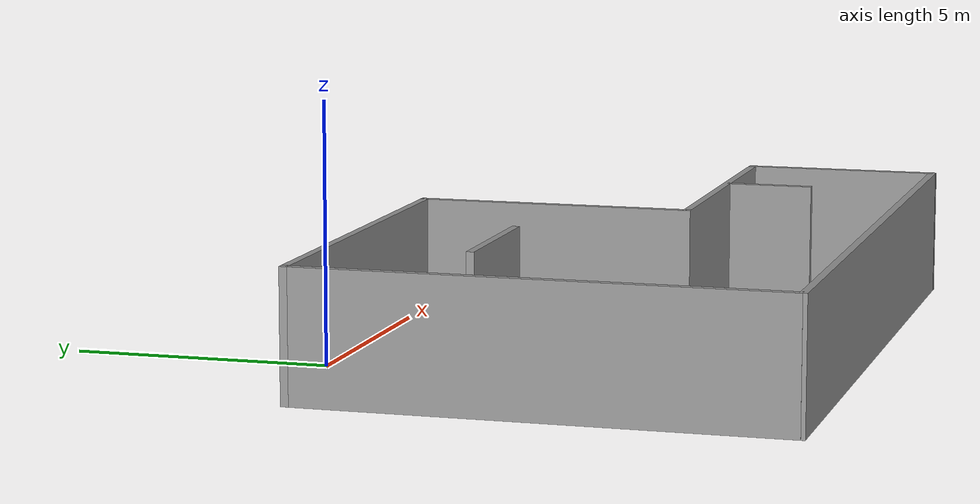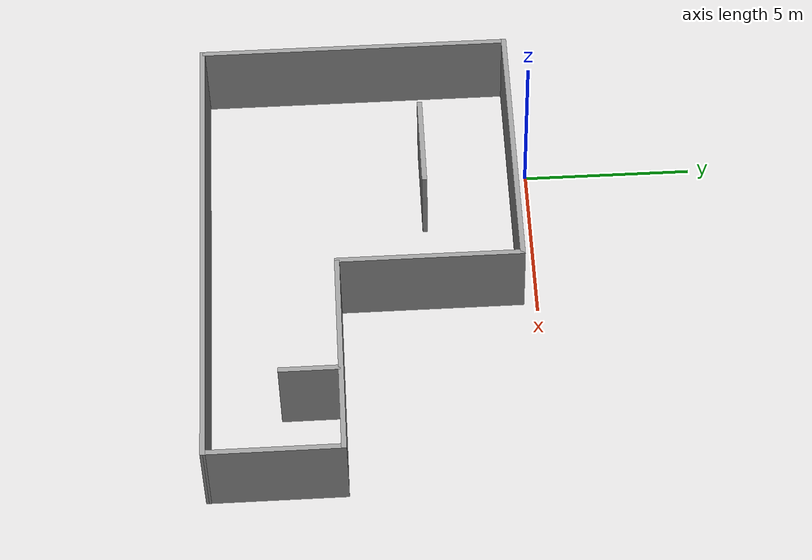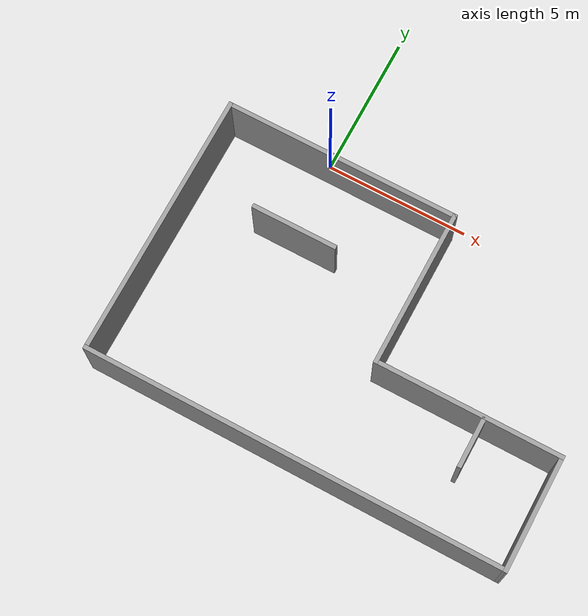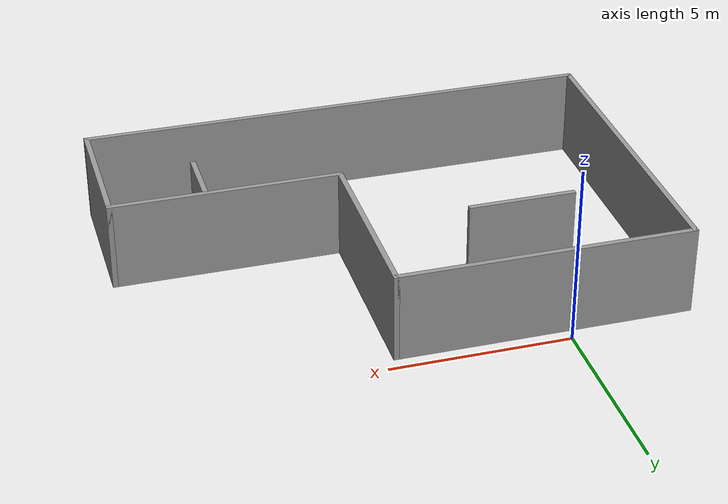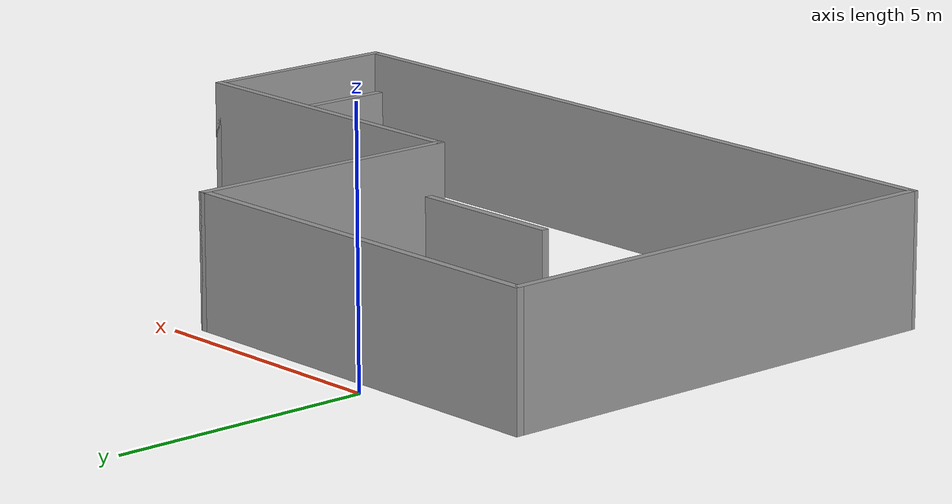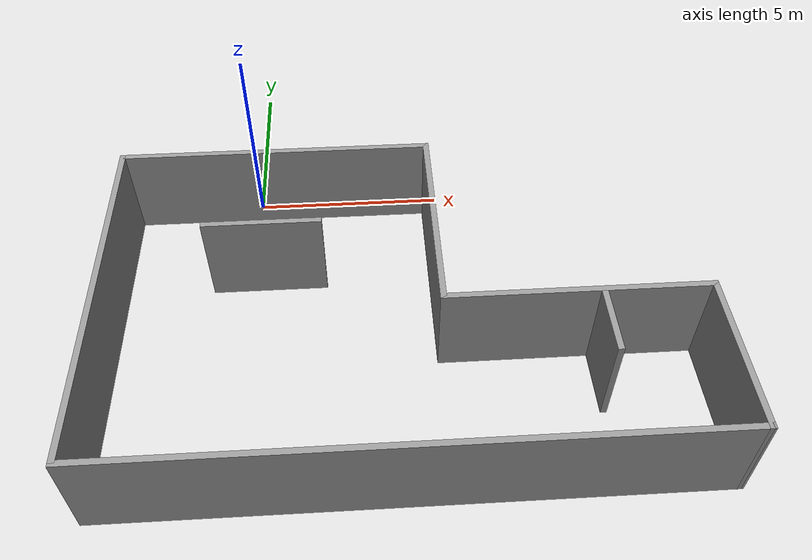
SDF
<?xml version='1.0'?>
<sdf version='1.7'>
  <model name='hyo_5'>
    <pose>3.79505 -4.86255 0 0 -0 0</pose>
    <link name='Wall_12'>
      <collision name='Wall_12_Collision'>
        <geometry>
          <box>
            <size>3 0.15 2.5</size>
          </box>
        </geometry>
        <pose>0 0 1.25 0 -0 0</pose>
      </collision>
      <visual name='Wall_12_Visual'>
        <pose>0 0 1.25 0 -0 0</pose>
        <geometry>
          <box>
            <size>3 0.15 2.5</size>
          </box>
        </geometry>
        <material>
          <script>
            <uri>file://media/materials/scripts/gazebo.material</uri>
            <name>Gazebo/Grey</name>
          </script>
          <ambient>1 1 1 1</ambient>
        </material>
        <meta>
          <layer>0</layer>
        </meta>
      </visual>
      <pose>-3.43086 1.72269 0 0 -0 0</pose>
    </link>
    <link name='Wall_14'>
      <collision name='Wall_14_Collision'>
        <geometry>
          <box>
            <size>1.75 0.15 2.5</size>
          </box>
        </geometry>
        <pose>0 0 1.25 0 -0 0</pose>
      </collision>
      <visual name='Wall_14_Visual'>
        <pose>0 0 1.25 0 -0 0</pose>
        <geometry>
          <box>
            <size>1.75 0.15 2.5</size>
          </box>
        </geometry>
        <material>
          <script>
            <uri>file://media/materials/scripts/gazebo.material</uri>
            <name>Gazebo/Grey</name>
          </script>
          <ambient>1 1 1 1</ambient>
        </material>
        <meta>
          <layer>0</layer>
        </meta>
      </visual>
      <pose>4.607 -1.82154 0 0 -0 -1.5708</pose>
    </link>
    <link name='Wall_2'>
      <collision name='Wall_2_Collision'>
        <geometry>
          <box>
            <size>9.25 0.15 2.5</size>
          </box>
        </geometry>
        <pose>0 0 1.25 0 -0 0</pose>
      </collision>
      <visual name='Wall_2_Visual'>
        <pose>0 0 1.25 0 -0 0</pose>
        <geometry>
          <box>
            <size>9.25 0.15 2.5</size>
          </box>
        </geometry>
        <material>
          <script>
            <uri>file://media/materials/scripts/gazebo.material</uri>
            <name>Gazebo/Grey</name>
          </script>
          <ambient>1 1 1 1</ambient>
        </material>
        <meta>
          <layer>0</layer>
        </meta>
      </visual>
      <pose>-7.22505 -0.137453 0 0 -0 -1.5708</pose>
    </link>
    <link name='Wall_4'>
      <collision name='Wall_4_Collision'>
        <geometry>
          <box>
            <size>8.25 0.15 2.5</size>
          </box>
        </geometry>
        <pose>0 0 1.25 0 -0 0</pose>
      </collision>
      <visual name='Wall_4_Visual'>
        <pose>0 0 1.25 0 -0 0</pose>
        <geometry>
          <box>
            <size>8.25 0.15 2.5</size>
          </box>
        </geometry>
        <material>
          <script>
            <uri>file://media/materials/scripts/gazebo.material</uri>
            <name>Gazebo/Grey</name>
          </script>
          <ambient>1 1 1 1</ambient>
        </material>
        <meta>
          <layer>0</layer>
        </meta>
      </visual>
      <pose>-3.17505 4.41255 0 0 -0 0</pose>
    </link>
    <link name='Wall_5'>
      <collision name='Wall_5_Collision'>
        <geometry>
          <box>
            <size>5.5 0.15 2.5</size>
          </box>
        </geometry>
        <pose>0 0 1.25 0 -0 0</pose>
      </collision>
      <visual name='Wall_5_Visual'>
        <pose>0 0 1.25 0 -0 0</pose>
        <geometry>
          <box>
            <size>5.5 0.15 2.5</size>
          </box>
        </geometry>
        <material>
          <script>
            <uri>file://media/materials/scripts/gazebo.material</uri>
            <name>Gazebo/Grey</name>
          </script>
          <ambient>1 1 1 1</ambient>
        </material>
        <meta>
          <layer>0</layer>
        </meta>
      </visual>
      <pose>0.874953 1.73755 0 0 -0 -1.5708</pose>
    </link>
    <link name='Wall_6'>
      <collision name='Wall_6_Collision'>
        <geometry>
          <box>
            <size>6.5 0.15 2.5</size>
          </box>
        </geometry>
        <pose>0 0 1.25 0 -0 0</pose>
      </collision>
      <visual name='Wall_6_Visual'>
        <pose>0 0 1.25 0 -0 0</pose>
        <geometry>
          <box>
            <size>6.5 0.15 2.5</size>
          </box>
        </geometry>
        <material>
          <script>
            <uri>file://media/materials/scripts/gazebo.material</uri>
            <name>Gazebo/Grey</name>
          </script>
          <ambient>1 1 1 1</ambient>
        </material>
        <meta>
          <layer>0</layer>
        </meta>
      </visual>
      <pose>4.04995 -0.937453 0 0 -0 0</pose>
    </link>
    <link name='Wall_7'>
      <collision name='Wall_7_Collision'>
        <geometry>
          <box>
            <size>4 0.15 2.5</size>
          </box>
        </geometry>
        <pose>0 0 1.25 0 -0 0</pose>
      </collision>
      <visual name='Wall_7_Visual'>
        <pose>0 0 1.25 0 -0 0</pose>
        <geometry>
          <box>
            <size>4 0.15 2.5</size>
          </box>
        </geometry>
        <material>
          <script>
            <uri>file://media/materials/scripts/gazebo.material</uri>
            <name>Gazebo/Grey</name>
          </script>
          <ambient>1 1 1 1</ambient>
        </material>
        <meta>
          <layer>0</layer>
        </meta>
      </visual>
      <pose>7.22495 -2.86245 0 0 -0 -1.5708</pose>
    </link>
    <link name='Wall_8'>
      <collision name='Wall_8_Collision'>
        <geometry>
          <box>
            <size>14.5974 0.15 2.5</size>
          </box>
        </geometry>
        <pose>0 0 1.25 0 -0 0</pose>
      </collision>
      <visual name='Wall_8_Visual'>
        <pose>0 0 1.25 0 -0 0</pose>
        <geometry>
          <box>
            <size>14.5974 0.15 2.5</size>
          </box>
        </geometry>
        <material>
          <script>
            <uri>file://media/materials/scripts/gazebo.material</uri>
            <name>Gazebo/Grey</name>
          </script>
          <ambient>1 1 1 1</ambient>
        </material>
        <meta>
          <layer>0</layer>
        </meta>
      </visual>
      <pose>0.001239 -4.77831 0 0 -0 3.14033</pose>
    </link>
    <static>1</static>
  </model>
</sdf>
